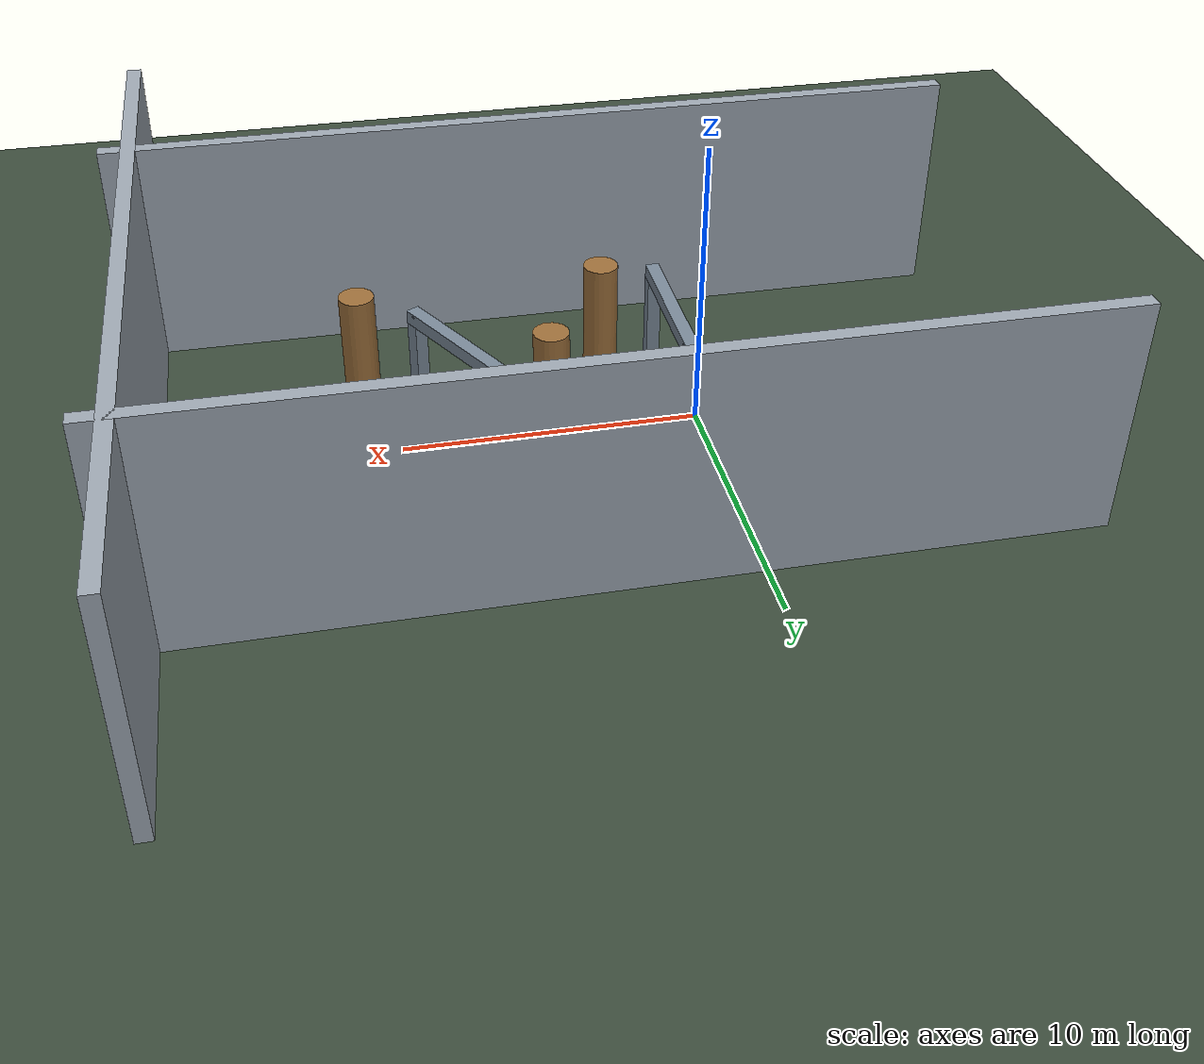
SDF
<?xml version="1.0"?>
<sdf version="1.6">
  <world name="E3_cluttered">
    <gravity>0 0 -9.80665</gravity>
    <physics name="ode_1khz" type="ode">
      <max_step_size>0.001</max_step_size>
      <real_time_factor>1.0</real_time_factor>
      <real_time_update_rate>1000</real_time_update_rate>
    </physics>

    <scene>
      <ambient>0.32 0.32 0.32 1</ambient>
      <background>0.60 0.72 0.84 1</background>
      <shadows>false</shadows>
    </scene>

    <light name="sun" type="directional">
      <cast_shadows>false</cast_shadows>
      <pose>0 0 12 0 0 0</pose>
      <diffuse>0.9 0.9 0.9 1</diffuse>
      <specular>0.1 0.1 0.1 1</specular>
      <direction>-0.4 0.2 -0.9</direction>
    </light>

    <include>
      <uri>model://mid360_open_ground</uri>
      <name>clutter_ground</name>
    </include>

    <include>
      <uri>model://gate_frame</uri>
      <name>gate_frame_near</name>
      <pose>1 0 0 0 0 0</pose>
    </include>
    <include>
      <uri>model://gate_frame</uri>
      <name>gate_frame_far</name>
      <pose>8 1 0 0 0 0.5</pose>
    </include>

    <include>
      <uri>model://pillar</uri>
      <name>clutter_pillar_southwest</name>
      <pose>2.5 -4 0 0 0 0</pose>
    </include>
    <include>
      <uri>model://pillar</uri>
      <name>clutter_pillar_center</name>
      <pose>5 0 0 0 0 0</pose>
    </include>
    <include>
      <uri>model://pillar</uri>
      <name>clutter_pillar_northeast</name>
      <pose>8 3.5 0 0 0 0</pose>
    </include>
    <include>
      <uri>model://pillar</uri>
      <name>clutter_pillar_southeast</name>
      <pose>11 -3.5 0 0 0 0</pose>
    </include>

    <include>
      <uri>model://sparse_wide_wall</uri>
      <name>clutter_wall_east</name>
      <pose>18 0 0 0 0 0</pose>
    </include>
    <include>
      <uri>model://sparse_wide_wall</uri>
      <name>clutter_wall_north</name>
      <pose>4 8 0 0 0 1.5707963267948966</pose>
    </include>
    <include>
      <uri>model://sparse_wide_wall</uri>
      <name>clutter_wall_south</name>
      <pose>4 -8 0 0 0 1.5707963267948966</pose>
    </include>

    <!-- Observer and all five targets are spawned only by gate_s05.launch. -->
  </world>
</sdf>

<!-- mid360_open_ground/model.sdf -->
<sdf version="1.6">
  <model name="mid360_open_ground">
    <static>true</static>
    <link name="ground_link">
      <collision name="ground_collision">
        <geometry>
          <plane>
            <normal>0 0 1</normal>
            <size>100 100</size>
          </plane>
        </geometry>
        <surface>
          <friction>
            <ode>
              <mu>1.0</mu>
              <mu2>1.0</mu2>
            </ode>
          </friction>
          <contact>
            <collide_without_contact>true</collide_without_contact>
          </contact>
        </surface>
      </collision>
      <visual name="ground_visual">
        <geometry>
          <plane>
            <normal>0 0 1</normal>
            <size>100 100</size>
          </plane>
        </geometry>
        <material>
          <ambient>0.18 0.22 0.18 1</ambient>
          <diffuse>0.24 0.30 0.24 1</diffuse>
          <specular>0.01 0.01 0.01 1</specular>
        </material>
      </visual>
    </link>
  </model>
</sdf>

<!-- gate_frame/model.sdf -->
<sdf version="1.6">
  <model name="gate_frame">
    <static>true</static>
    <link name="gate_link">
      <collision name="left_post_collision">
        <pose>0 2.5 2.25 0 0 0</pose>
        <geometry>
          <box><size>0.45 0.45 4.50</size></box>
        </geometry>
        <surface>
          <contact><collide_without_contact>true</collide_without_contact></contact>
        </surface>
      </collision>
      <visual name="left_post_visual">
        <pose>0 2.5 2.25 0 0 0</pose>
        <geometry>
          <box><size>0.45 0.45 4.50</size></box>
        </geometry>
        <material>
          <ambient>0.26 0.30 0.34 1</ambient>
          <diffuse>0.48 0.54 0.60 1</diffuse>
        </material>
      </visual>

      <collision name="right_post_collision">
        <pose>0 -2.5 2.25 0 0 0</pose>
        <geometry>
          <box><size>0.45 0.45 4.50</size></box>
        </geometry>
        <surface>
          <contact><collide_without_contact>true</collide_without_contact></contact>
        </surface>
      </collision>
      <visual name="right_post_visual">
        <pose>0 -2.5 2.25 0 0 0</pose>
        <geometry>
          <box><size>0.45 0.45 4.50</size></box>
        </geometry>
        <material>
          <ambient>0.26 0.30 0.34 1</ambient>
          <diffuse>0.48 0.54 0.60 1</diffuse>
        </material>
      </visual>

      <collision name="top_beam_collision">
        <pose>0 0 4.35 0 0 0</pose>
        <geometry>
          <box><size>0.45 5.45 0.45</size></box>
        </geometry>
        <surface>
          <contact><collide_without_contact>true</collide_without_contact></contact>
        </surface>
      </collision>
      <visual name="top_beam_visual">
        <pose>0 0 4.35 0 0 0</pose>
        <geometry>
          <box><size>0.45 5.45 0.45</size></box>
        </geometry>
        <material>
          <ambient>0.26 0.30 0.34 1</ambient>
          <diffuse>0.48 0.54 0.60 1</diffuse>
        </material>
      </visual>
    </link>
  </model>
</sdf>

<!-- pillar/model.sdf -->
<sdf version="1.6">
  <model name="pillar">
    <static>true</static>
    <link name="pillar_link">
      <collision name="pillar_collision">
        <pose>0 0 2.0 0 0 0</pose>
        <geometry>
          <cylinder>
            <radius>0.60</radius>
            <length>4.0</length>
          </cylinder>
        </geometry>
        <surface>
          <contact>
            <collide_without_contact>true</collide_without_contact>
          </contact>
        </surface>
      </collision>
      <visual name="pillar_visual">
        <pose>0 0 2.0 0 0 0</pose>
        <geometry>
          <cylinder>
            <radius>0.60</radius>
            <length>4.0</length>
          </cylinder>
        </geometry>
        <material>
          <ambient>0.42 0.30 0.16 1</ambient>
          <diffuse>0.62 0.44 0.23 1</diffuse>
          <specular>0.02 0.02 0.02 1</specular>
        </material>
      </visual>
    </link>
  </model>
</sdf>

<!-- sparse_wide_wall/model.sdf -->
<sdf version="1.6">
  <model name="sparse_wide_wall">
    <static>true</static>
    <link name="wall_link">
      <collision name="wall_collision">
        <pose>0 0 4.0 0 0 0</pose>
        <geometry>
          <box>
            <size>0.50 30.00 8.00</size>
          </box>
        </geometry>
      </collision>
      <visual name="wall_visual">
        <pose>0 0 4.0 0 0 0</pose>
        <geometry>
          <box>
            <size>0.50 30.00 8.00</size>
          </box>
        </geometry>
        <material>
          <ambient>0.42 0.45 0.48 1</ambient>
          <diffuse>0.62 0.66 0.70 1</diffuse>
        </material>
      </visual>
    </link>
  </model>
</sdf>
